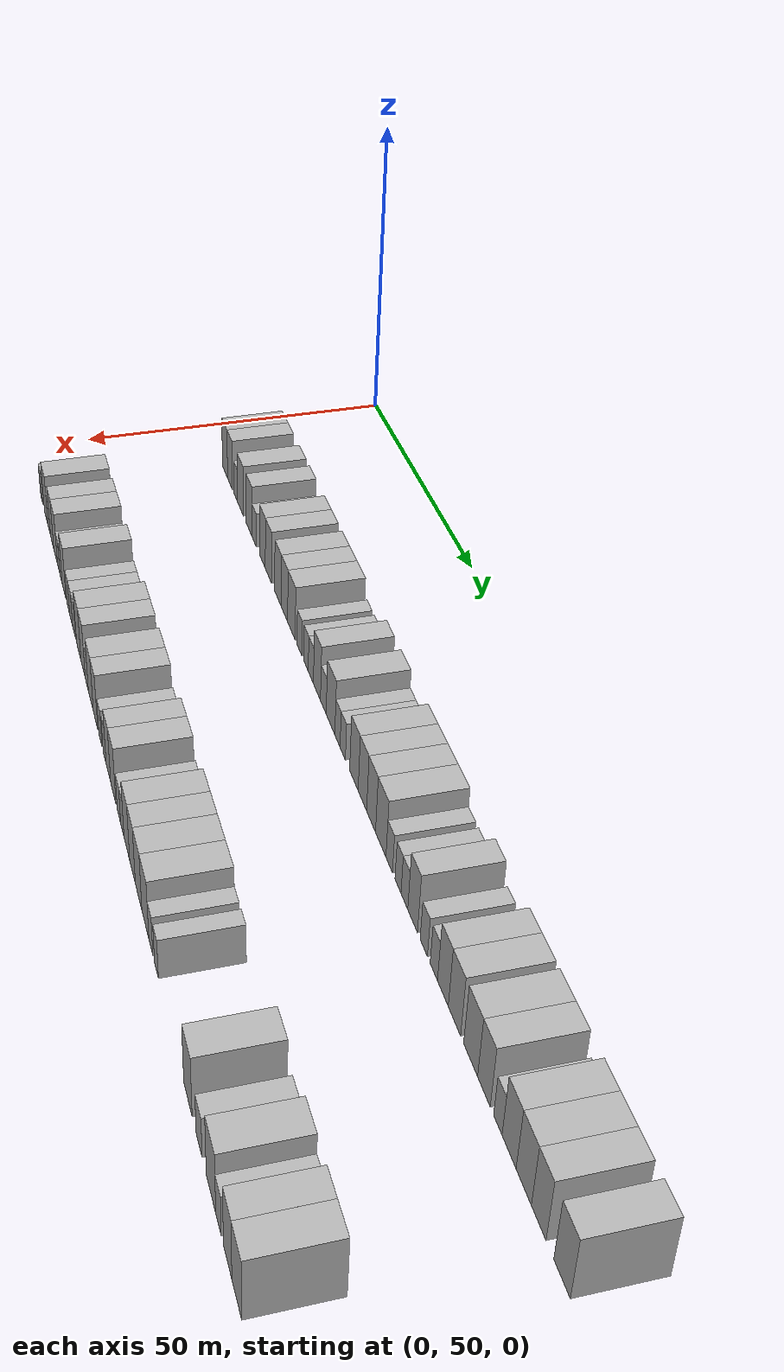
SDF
<sdf version="1.6">
 <world name="default">
  <model name="building_130">
   <static>1</static>
   <pose>25.0000 65.0644 0 0.000000 0.000000 0.000000</pose>
   <link name="link">
    <pose>0 0 4.50 0 0 0</pose>
    <collision name="collision"><geometry><box><size>10.0000 3.8439 9.0000</size></box></geometry></collision>
    <visual name="visual">
     <cast_shadows>0</cast_shadows>
     <geometry><box><size>10.0000 3.8439 9.0000</size></box></geometry>
     <material>
      <script>
       <uri>model://HANNAS_wall/materials/scripts</uri>
       <uri>model://HANNAS_wall/materials/textures</uri>
       <name>vrc/HANNAS_wall</name>
      </script>
     </material>
    </visual>
   </link>
  </model>
  <model name="building_131">
   <static>1</static>
   <pose>25.0000 68.8058 0 0.000000 0.000000 0.000000</pose>
   <link name="link">
    <pose>0 0 4.50 0 0 0</pose>
    <collision name="collision"><geometry><box><size>10.0000 3.6388 9.0000</size></box></geometry></collision>
    <visual name="visual">
     <cast_shadows>0</cast_shadows>
     <geometry><box><size>10.0000 3.6388 9.0000</size></box></geometry>
     <material>
      <script>
       <uri>model://HANNAS_wall/materials/scripts</uri>
       <uri>model://HANNAS_wall/materials/textures</uri>
       <name>vrc/HANNAS_wall</name>
      </script>
     </material>
    </visual>
   </link>
  </model>
  <model name="building_132">
   <static>1</static>
   <pose>25.0000 72.9142 0 0.000000 0.000000 0.000000</pose>
   <link name="link">
    <pose>0 0 3.00 0 0 0</pose>
    <collision name="collision"><geometry><box><size>10.0000 2.5780 6.0000</size></box></geometry></collision>
    <visual name="visual">
     <cast_shadows>0</cast_shadows>
     <geometry><box><size>10.0000 2.5780 6.0000</size></box></geometry>
     <material>
      <script>
       <uri>model://HANNAS_wall/materials/scripts</uri>
       <uri>model://HANNAS_wall/materials/textures</uri>
       <name>vrc/HANNAS_wall</name>
      </script>
     </material>
    </visual>
   </link>
  </model>
  <model name="building_133">
   <static>1</static>
   <pose>25.0000 76.3397 0 0.000000 0.000000 0.000000</pose>
   <link name="link">
    <pose>0 0 4.50 0 0 0</pose>
    <collision name="collision"><geometry><box><size>10.0000 4.2730 9.0000</size></box></geometry></collision>
    <visual name="visual">
     <cast_shadows>0</cast_shadows>
     <geometry><box><size>10.0000 4.2730 9.0000</size></box></geometry>
     <material>
      <script>
       <uri>model://HANNAS_wall/materials/scripts</uri>
       <uri>model://HANNAS_wall/materials/textures</uri>
       <name>vrc/HANNAS_wall</name>
      </script>
     </material>
    </visual>
   </link>
  </model>
  <model name="building_134">
   <static>1</static>
   <pose>25.0000 82.4493 0 0.000000 0.000000 0.000000</pose>
   <link name="link">
    <pose>0 0 4.50 0 0 0</pose>
    <collision name="collision"><geometry><box><size>10.0000 3.9463 9.0000</size></box></geometry></collision>
    <visual name="visual">
     <cast_shadows>0</cast_shadows>
     <geometry><box><size>10.0000 3.9463 9.0000</size></box></geometry>
     <material>
      <script>
       <uri>model://HANNAS_wall/materials/scripts</uri>
       <uri>model://HANNAS_wall/materials/textures</uri>
       <name>vrc/HANNAS_wall</name>
      </script>
     </material>
    </visual>
   </link>
  </model>
  <model name="building_135">
   <static>1</static>
   <pose>25.0000 85.8349 0 0.000000 0.000000 0.000000</pose>
   <link name="link">
    <pose>0 0 3.00 0 0 0</pose>
    <collision name="collision"><geometry><box><size>10.0000 2.8249 6.0000</size></box></geometry></collision>
    <visual name="visual">
     <cast_shadows>0</cast_shadows>
     <geometry><box><size>10.0000 2.8249 6.0000</size></box></geometry>
     <material>
      <script>
       <uri>model://HANNAS_wall/materials/scripts</uri>
       <uri>model://HANNAS_wall/materials/textures</uri>
       <name>vrc/HANNAS_wall</name>
      </script>
     </material>
    </visual>
   </link>
  </model>
  <model name="building_136">
   <static>1</static>
   <pose>25.0000 91.1812 0 0.000000 0.000000 0.000000</pose>
   <link name="link">
    <pose>0 0 4.50 0 0 0</pose>
    <collision name="collision"><geometry><box><size>10.0000 3.8676 9.0000</size></box></geometry></collision>
    <visual name="visual">
     <cast_shadows>0</cast_shadows>
     <geometry><box><size>10.0000 3.8676 9.0000</size></box></geometry>
     <material>
      <script>
       <uri>model://HANNAS_wall/materials/scripts</uri>
       <uri>model://HANNAS_wall/materials/textures</uri>
       <name>vrc/HANNAS_wall</name>
      </script>
     </material>
    </visual>
   </link>
  </model>
  <model name="building_137">
   <static>1</static>
   <pose>25.0000 95.0443 0 0.000000 0.000000 0.000000</pose>
   <link name="link">
    <pose>0 0 4.50 0 0 0</pose>
    <collision name="collision"><geometry><box><size>10.0000 3.8586 9.0000</size></box></geometry></collision>
    <visual name="visual">
     <cast_shadows>0</cast_shadows>
     <geometry><box><size>10.0000 3.8586 9.0000</size></box></geometry>
     <material>
      <script>
       <uri>model://HANNAS_wall/materials/scripts</uri>
       <uri>model://HANNAS_wall/materials/textures</uri>
       <name>vrc/HANNAS_wall</name>
      </script>
     </material>
    </visual>
   </link>
  </model>
  <model name="building_138">
   <static>1</static>
   <pose>25.0000 100.9538 0 0.000000 0.000000 0.000000</pose>
   <link name="link">
    <pose>0 0 4.50 0 0 0</pose>
    <collision name="collision"><geometry><box><size>10.0000 3.9604 9.0000</size></box></geometry></collision>
    <visual name="visual">
     <cast_shadows>0</cast_shadows>
     <geometry><box><size>10.0000 3.9604 9.0000</size></box></geometry>
     <material>
      <script>
       <uri>model://HANNAS_wall/materials/scripts</uri>
       <uri>model://HANNAS_wall/materials/textures</uri>
       <name>vrc/HANNAS_wall</name>
      </script>
     </material>
    </visual>
   </link>
  </model>
  <model name="building_139">
   <static>1</static>
   <pose>25.0000 104.8355 0 0.000000 0.000000 0.000000</pose>
   <link name="link">
    <pose>0 0 4.50 0 0 0</pose>
    <collision name="collision"><geometry><box><size>10.0000 3.8031 9.0000</size></box></geometry></collision>
    <visual name="visual">
     <cast_shadows>0</cast_shadows>
     <geometry><box><size>10.0000 3.8031 9.0000</size></box></geometry>
     <material>
      <script>
       <uri>model://HANNAS_wall/materials/scripts</uri>
       <uri>model://HANNAS_wall/materials/textures</uri>
       <name>vrc/HANNAS_wall</name>
      </script>
     </material>
    </visual>
   </link>
  </model>
  <model name="building_140">
   <static>1</static>
   <pose>25.0000 108.9244 0 0.000000 0.000000 0.000000</pose>
   <link name="link">
    <pose>0 0 4.50 0 0 0</pose>
    <collision name="collision"><geometry><box><size>10.0000 4.3747 9.0000</size></box></geometry></collision>
    <visual name="visual">
     <cast_shadows>0</cast_shadows>
     <geometry><box><size>10.0000 4.3747 9.0000</size></box></geometry>
     <material>
      <script>
       <uri>model://HANNAS_wall/materials/scripts</uri>
       <uri>model://HANNAS_wall/materials/textures</uri>
       <name>vrc/HANNAS_wall</name>
      </script>
     </material>
    </visual>
   </link>
  </model>
  <model name="building_141">
   <static>1</static>
   <pose>25.0000 113.4493 0 0.000000 0.000000 0.000000</pose>
   <link name="link">
    <pose>0 0 3.00 0 0 0</pose>
    <collision name="collision"><geometry><box><size>10.0000 2.6751 6.0000</size></box></geometry></collision>
    <visual name="visual">
     <cast_shadows>0</cast_shadows>
     <geometry><box><size>10.0000 2.6751 6.0000</size></box></geometry>
     <material>
      <script>
       <uri>model://HANNAS_wall/materials/scripts</uri>
       <uri>model://HANNAS_wall/materials/textures</uri>
       <name>vrc/HANNAS_wall</name>
      </script>
     </material>
    </visual>
   </link>
  </model>
  <model name="building_142">
   <static>1</static>
   <pose>25.0000 117.0825 0 0.000000 0.000000 0.000000</pose>
   <link name="link">
    <pose>0 0 3.00 0 0 0</pose>
    <collision name="collision"><geometry><box><size>10.0000 2.5914 6.0000</size></box></geometry></collision>
    <visual name="visual">
     <cast_shadows>0</cast_shadows>
     <geometry><box><size>10.0000 2.5914 6.0000</size></box></geometry>
     <material>
      <script>
       <uri>model://HANNAS_wall/materials/scripts</uri>
       <uri>model://HANNAS_wall/materials/textures</uri>
       <name>vrc/HANNAS_wall</name>
      </script>
     </material>
    </visual>
   </link>
  </model>
  <model name="building_143">
   <static>1</static>
   <pose>25.0000 119.7639 0 0.000000 0.000000 0.000000</pose>
   <link name="link">
    <pose>0 0 3.00 0 0 0</pose>
    <collision name="collision"><geometry><box><size>10.0000 2.7714 6.0000</size></box></geometry></collision>
    <visual name="visual">
     <cast_shadows>0</cast_shadows>
     <geometry><box><size>10.0000 2.7714 6.0000</size></box></geometry>
     <material>
      <script>
       <uri>model://HANNAS_wall/materials/scripts</uri>
       <uri>model://HANNAS_wall/materials/textures</uri>
       <name>vrc/HANNAS_wall</name>
      </script>
     </material>
    </visual>
   </link>
  </model>
  <model name="building_144">
   <static>1</static>
   <pose>25.0000 122.9993 0 0.000000 0.000000 0.000000</pose>
   <link name="link">
    <pose>0 0 4.50 0 0 0</pose>
    <collision name="collision"><geometry><box><size>10.0000 3.6993 9.0000</size></box></geometry></collision>
    <visual name="visual">
     <cast_shadows>0</cast_shadows>
     <geometry><box><size>10.0000 3.6993 9.0000</size></box></geometry>
     <material>
      <script>
       <uri>model://HANNAS_wall/materials/scripts</uri>
       <uri>model://HANNAS_wall/materials/textures</uri>
       <name>vrc/HANNAS_wall</name>
      </script>
     </material>
    </visual>
   </link>
  </model>
  <model name="building_145">
   <static>1</static>
   <pose>25.0000 126.3126 0 0.000000 0.000000 0.000000</pose>
   <link name="link">
    <pose>0 0 3.00 0 0 0</pose>
    <collision name="collision"><geometry><box><size>10.0000 2.9273 6.0000</size></box></geometry></collision>
    <visual name="visual">
     <cast_shadows>0</cast_shadows>
     <geometry><box><size>10.0000 2.9273 6.0000</size></box></geometry>
     <material>
      <script>
       <uri>model://HANNAS_wall/materials/scripts</uri>
       <uri>model://HANNAS_wall/materials/textures</uri>
       <name>vrc/HANNAS_wall</name>
      </script>
     </material>
    </visual>
   </link>
  </model>
  <model name="building_146">
   <static>1</static>
   <pose>25.0000 129.9401 0 0.000000 0.000000 0.000000</pose>
   <link name="link">
    <pose>0 0 4.50 0 0 0</pose>
    <collision name="collision"><geometry><box><size>10.0000 4.3277 9.0000</size></box></geometry></collision>
    <visual name="visual">
     <cast_shadows>0</cast_shadows>
     <geometry><box><size>10.0000 4.3277 9.0000</size></box></geometry>
     <material>
      <script>
       <uri>model://HANNAS_wall/materials/scripts</uri>
       <uri>model://HANNAS_wall/materials/textures</uri>
       <name>vrc/HANNAS_wall</name>
      </script>
     </material>
    </visual>
   </link>
  </model>
  <model name="building_147">
   <static>1</static>
   <pose>25.0000 133.3811 0 0.000000 0.000000 0.000000</pose>
   <link name="link">
    <pose>0 0 3.00 0 0 0</pose>
    <collision name="collision"><geometry><box><size>10.0000 2.5542 6.0000</size></box></geometry></collision>
    <visual name="visual">
     <cast_shadows>0</cast_shadows>
     <geometry><box><size>10.0000 2.5542 6.0000</size></box></geometry>
     <material>
      <script>
       <uri>model://HANNAS_wall/materials/scripts</uri>
       <uri>model://HANNAS_wall/materials/textures</uri>
       <name>vrc/HANNAS_wall</name>
      </script>
     </material>
    </visual>
   </link>
  </model>
  <model name="building_148">
   <static>1</static>
   <pose>25.0000 135.9345 0 0.000000 0.000000 0.000000</pose>
   <link name="link">
    <pose>0 0 3.00 0 0 0</pose>
    <collision name="collision"><geometry><box><size>10.0000 2.5527 6.0000</size></box></geometry></collision>
    <visual name="visual">
     <cast_shadows>0</cast_shadows>
     <geometry><box><size>10.0000 2.5527 6.0000</size></box></geometry>
     <material>
      <script>
       <uri>model://HANNAS_wall/materials/scripts</uri>
       <uri>model://HANNAS_wall/materials/textures</uri>
       <name>vrc/HANNAS_wall</name>
      </script>
     </material>
    </visual>
   </link>
  </model>
  <model name="building_149">
   <static>1</static>
   <pose>25.0000 141.1708 0 0.000000 0.000000 0.000000</pose>
   <link name="link">
    <pose>0 0 4.50 0 0 0</pose>
    <collision name="collision"><geometry><box><size>10.0000 3.9199 9.0000</size></box></geometry></collision>
    <visual name="visual">
     <cast_shadows>0</cast_shadows>
     <geometry><box><size>10.0000 3.9199 9.0000</size></box></geometry>
     <material>
      <script>
       <uri>model://HANNAS_wall/materials/scripts</uri>
       <uri>model://HANNAS_wall/materials/textures</uri>
       <name>vrc/HANNAS_wall</name>
      </script>
     </material>
    </visual>
   </link>
  </model>
  <model name="building_150">
   <static>1</static>
   <pose>25.0000 145.0275 0 0.000000 0.000000 0.000000</pose>
   <link name="link">
    <pose>0 0 4.50 0 0 0</pose>
    <collision name="collision"><geometry><box><size>10.0000 3.7934 9.0000</size></box></geometry></collision>
    <visual name="visual">
     <cast_shadows>0</cast_shadows>
     <geometry><box><size>10.0000 3.7934 9.0000</size></box></geometry>
     <material>
      <script>
       <uri>model://HANNAS_wall/materials/scripts</uri>
       <uri>model://HANNAS_wall/materials/textures</uri>
       <name>vrc/HANNAS_wall</name>
      </script>
     </material>
    </visual>
   </link>
  </model>
  <model name="building_151">
   <static>1</static>
   <pose>25.0000 148.8628 0 0.000000 0.000000 0.000000</pose>
   <link name="link">
    <pose>0 0 4.50 0 0 0</pose>
    <collision name="collision"><geometry><box><size>10.0000 3.8771 9.0000</size></box></geometry></collision>
    <visual name="visual">
     <cast_shadows>0</cast_shadows>
     <geometry><box><size>10.0000 3.8771 9.0000</size></box></geometry>
     <material>
      <script>
       <uri>model://HANNAS_wall/materials/scripts</uri>
       <uri>model://HANNAS_wall/materials/textures</uri>
       <name>vrc/HANNAS_wall</name>
      </script>
     </material>
    </visual>
   </link>
  </model>
  <model name="building_152">
   <static>1</static>
   <pose>25.0000 152.9997 0 0.000000 0.000000 0.000000</pose>
   <link name="link">
    <pose>0 0 4.50 0 0 0</pose>
    <collision name="collision"><geometry><box><size>10.0000 4.3968 9.0000</size></box></geometry></collision>
    <visual name="visual">
     <cast_shadows>0</cast_shadows>
     <geometry><box><size>10.0000 4.3968 9.0000</size></box></geometry>
     <material>
      <script>
       <uri>model://HANNAS_wall/materials/scripts</uri>
       <uri>model://HANNAS_wall/materials/textures</uri>
       <name>vrc/HANNAS_wall</name>
      </script>
     </material>
    </visual>
   </link>
  </model>
  <model name="building_153">
   <static>1</static>
   <pose>25.0000 156.5341 0 0.000000 0.000000 0.000000</pose>
   <link name="link">
    <pose>0 0 3.00 0 0 0</pose>
    <collision name="collision"><geometry><box><size>10.0000 2.6719 6.0000</size></box></geometry></collision>
    <visual name="visual">
     <cast_shadows>0</cast_shadows>
     <geometry><box><size>10.0000 2.6719 6.0000</size></box></geometry>
     <material>
      <script>
       <uri>model://HANNAS_wall/materials/scripts</uri>
       <uri>model://HANNAS_wall/materials/textures</uri>
       <name>vrc/HANNAS_wall</name>
      </script>
     </material>
    </visual>
   </link>
  </model>
  <model name="building_154">
   <static>1</static>
   <pose>25.0000 160.0767 0 0.000000 0.000000 0.000000</pose>
   <link name="link">
    <pose>0 0 3.00 0 0 0</pose>
    <collision name="collision"><geometry><box><size>10.0000 2.4133 6.0000</size></box></geometry></collision>
    <visual name="visual">
     <cast_shadows>0</cast_shadows>
     <geometry><box><size>10.0000 2.4133 6.0000</size></box></geometry>
     <material>
      <script>
       <uri>model://HANNAS_wall/materials/scripts</uri>
       <uri>model://HANNAS_wall/materials/textures</uri>
       <name>vrc/HANNAS_wall</name>
      </script>
     </material>
    </visual>
   </link>
  </model>
  <model name="building_155">
   <static>1</static>
   <pose>25.0000 162.6067 0 0.000000 0.000000 0.000000</pose>
   <link name="link">
    <pose>0 0 3.00 0 0 0</pose>
    <collision name="collision"><geometry><box><size>10.0000 2.6466 6.0000</size></box></geometry></collision>
    <visual name="visual">
     <cast_shadows>0</cast_shadows>
     <geometry><box><size>10.0000 2.6466 6.0000</size></box></geometry>
     <material>
      <script>
       <uri>model://HANNAS_wall/materials/scripts</uri>
       <uri>model://HANNAS_wall/materials/textures</uri>
       <name>vrc/HANNAS_wall</name>
      </script>
     </material>
    </visual>
   </link>
  </model>
  <model name="building_156">
   <static>1</static>
   <pose>25.0000 165.7746 0 0.000000 0.000000 0.000000</pose>
   <link name="link">
    <pose>0 0 4.50 0 0 0</pose>
    <collision name="collision"><geometry><box><size>10.0000 3.6893 9.0000</size></box></geometry></collision>
    <visual name="visual">
     <cast_shadows>0</cast_shadows>
     <geometry><box><size>10.0000 3.6893 9.0000</size></box></geometry>
     <material>
      <script>
       <uri>model://HANNAS_wall/materials/scripts</uri>
       <uri>model://HANNAS_wall/materials/textures</uri>
       <name>vrc/HANNAS_wall</name>
      </script>
     </material>
    </visual>
   </link>
  </model>
  <model name="building_157">
   <static>1</static>
   <pose>25.0000 169.9534 0 0.000000 0.000000 0.000000</pose>
   <link name="link">
    <pose>0 0 3.00 0 0 0</pose>
    <collision name="collision"><geometry><box><size>10.0000 2.6684 6.0000</size></box></geometry></collision>
    <visual name="visual">
     <cast_shadows>0</cast_shadows>
     <geometry><box><size>10.0000 2.6684 6.0000</size></box></geometry>
     <material>
      <script>
       <uri>model://HANNAS_wall/materials/scripts</uri>
       <uri>model://HANNAS_wall/materials/textures</uri>
       <name>vrc/HANNAS_wall</name>
      </script>
     </material>
    </visual>
   </link>
  </model>
  <model name="building_158">
   <static>1</static>
   <pose>25.0000 173.5885 0 0.000000 0.000000 0.000000</pose>
   <link name="link">
    <pose>0 0 3.00 0 0 0</pose>
    <collision name="collision"><geometry><box><size>10.0000 2.6018 6.0000</size></box></geometry></collision>
    <visual name="visual">
     <cast_shadows>0</cast_shadows>
     <geometry><box><size>10.0000 2.6018 6.0000</size></box></geometry>
     <material>
      <script>
       <uri>model://HANNAS_wall/materials/scripts</uri>
       <uri>model://HANNAS_wall/materials/textures</uri>
       <name>vrc/HANNAS_wall</name>
      </script>
     </material>
    </visual>
   </link>
  </model>
  <model name="building_159">
   <static>1</static>
   <pose>25.0000 176.7605 0 0.000000 0.000000 0.000000</pose>
   <link name="link">
    <pose>0 0 4.50 0 0 0</pose>
    <collision name="collision"><geometry><box><size>10.0000 3.7422 9.0000</size></box></geometry></collision>
    <visual name="visual">
     <cast_shadows>0</cast_shadows>
     <geometry><box><size>10.0000 3.7422 9.0000</size></box></geometry>
     <material>
      <script>
       <uri>model://HANNAS_wall/materials/scripts</uri>
       <uri>model://HANNAS_wall/materials/textures</uri>
       <name>vrc/HANNAS_wall</name>
      </script>
     </material>
    </visual>
   </link>
  </model>
  <model name="building_160">
   <static>1</static>
   <pose>25.0000 180.7043 0 0.000000 0.000000 0.000000</pose>
   <link name="link">
    <pose>0 0 4.50 0 0 0</pose>
    <collision name="collision"><geometry><box><size>10.0000 4.1453 9.0000</size></box></geometry></collision>
    <visual name="visual">
     <cast_shadows>0</cast_shadows>
     <geometry><box><size>10.0000 4.1453 9.0000</size></box></geometry>
     <material>
      <script>
       <uri>model://HANNAS_wall/materials/scripts</uri>
       <uri>model://HANNAS_wall/materials/textures</uri>
       <name>vrc/HANNAS_wall</name>
      </script>
     </material>
    </visual>
   </link>
  </model>
  <model name="building_161">
   <static>1</static>
   <pose>25.0000 186.0130 0 0.000000 0.000000 0.000000</pose>
   <link name="link">
    <pose>0 0 4.50 0 0 0</pose>
    <collision name="collision"><geometry><box><size>10.0000 4.4722 9.0000</size></box></geometry></collision>
    <visual name="visual">
     <cast_shadows>0</cast_shadows>
     <geometry><box><size>10.0000 4.4722 9.0000</size></box></geometry>
     <material>
      <script>
       <uri>model://HANNAS_wall/materials/scripts</uri>
       <uri>model://HANNAS_wall/materials/textures</uri>
       <name>vrc/HANNAS_wall</name>
      </script>
     </material>
    </visual>
   </link>
  </model>
  <model name="building_162">
   <static>1</static>
   <pose>25.0000 190.2027 0 0.000000 0.000000 0.000000</pose>
   <link name="link">
    <pose>0 0 4.50 0 0 0</pose>
    <collision name="collision"><geometry><box><size>10.0000 3.9072 9.0000</size></box></geometry></collision>
    <visual name="visual">
     <cast_shadows>0</cast_shadows>
     <geometry><box><size>10.0000 3.9072 9.0000</size></box></geometry>
     <material>
      <script>
       <uri>model://HANNAS_wall/materials/scripts</uri>
       <uri>model://HANNAS_wall/materials/textures</uri>
       <name>vrc/HANNAS_wall</name>
      </script>
     </material>
    </visual>
   </link>
  </model>
  <model name="building_163">
   <static>1</static>
   <pose>25.0000 194.4133 0 0.000000 0.000000 0.000000</pose>
   <link name="link">
    <pose>0 0 3.00 0 0 0</pose>
    <collision name="collision"><geometry><box><size>10.0000 2.5140 6.0000</size></box></geometry></collision>
    <visual name="visual">
     <cast_shadows>0</cast_shadows>
     <geometry><box><size>10.0000 2.5140 6.0000</size></box></geometry>
     <material>
      <script>
       <uri>model://HANNAS_wall/materials/scripts</uri>
       <uri>model://HANNAS_wall/materials/textures</uri>
       <name>vrc/HANNAS_wall</name>
      </script>
     </material>
    </visual>
   </link>
  </model>
  <model name="building_164">
   <static>1</static>
   <pose>25.0000 197.6882 0 0.000000 0.000000 0.000000</pose>
   <link name="link">
    <pose>0 0 4.50 0 0 0</pose>
    <collision name="collision"><geometry><box><size>10.0000 4.0358 9.0000</size></box></geometry></collision>
    <visual name="visual">
     <cast_shadows>0</cast_shadows>
     <geometry><box><size>10.0000 4.0358 9.0000</size></box></geometry>
     <material>
      <script>
       <uri>model://HANNAS_wall/materials/scripts</uri>
       <uri>model://HANNAS_wall/materials/textures</uri>
       <name>vrc/HANNAS_wall</name>
      </script>
     </material>
    </visual>
   </link>
  </model>
  <model name="building_165">
   <static>1</static>
   <pose>25.0000 201.8246 0 0.000000 0.000000 0.000000</pose>
   <link name="link">
    <pose>0 0 4.50 0 0 0</pose>
    <collision name="collision"><geometry><box><size>10.0000 4.2370 9.0000</size></box></geometry></collision>
    <visual name="visual">
     <cast_shadows>0</cast_shadows>
     <geometry><box><size>10.0000 4.2370 9.0000</size></box></geometry>
     <material>
      <script>
       <uri>model://HANNAS_wall/materials/scripts</uri>
       <uri>model://HANNAS_wall/materials/textures</uri>
       <name>vrc/HANNAS_wall</name>
      </script>
     </material>
    </visual>
   </link>
  </model>
  <model name="building_166">
   <static>1</static>
   <pose>25.0000 205.8927 0 0.000000 0.000000 0.000000</pose>
   <link name="link">
    <pose>0 0 4.50 0 0 0</pose>
    <collision name="collision"><geometry><box><size>10.0000 3.8991 9.0000</size></box></geometry></collision>
    <visual name="visual">
     <cast_shadows>0</cast_shadows>
     <geometry><box><size>10.0000 3.8991 9.0000</size></box></geometry>
     <material>
      <script>
       <uri>model://HANNAS_wall/materials/scripts</uri>
       <uri>model://HANNAS_wall/materials/textures</uri>
       <name>vrc/HANNAS_wall</name>
      </script>
     </material>
    </visual>
   </link>
  </model>
  <model name="building_167">
   <static>1</static>
   <pose>25.0000 211.9227 0 0.000000 0.000000 0.000000</pose>
   <link name="link">
    <pose>0 0 4.50 0 0 0</pose>
    <collision name="collision"><geometry><box><size>10.0000 4.1609 9.0000</size></box></geometry></collision>
    <visual name="visual">
     <cast_shadows>0</cast_shadows>
     <geometry><box><size>10.0000 4.1609 9.0000</size></box></geometry>
     <material>
      <script>
       <uri>model://HANNAS_wall/materials/scripts</uri>
       <uri>model://HANNAS_wall/materials/textures</uri>
       <name>vrc/HANNAS_wall</name>
      </script>
     </material>
    </visual>
   </link>
  </model>
  <model name="building_360">
   <static>1</static>
   <pose>55.0000 66.6183 0 0.000000 0.000000 0.000000</pose>
   <link name="link">
    <pose>0 0 3.00 0 0 0</pose>
    <collision name="collision"><geometry><box><size>10.0000 2.5934 6.0000</size></box></geometry></collision>
    <visual name="visual">
     <cast_shadows>0</cast_shadows>
     <geometry><box><size>10.0000 2.5934 6.0000</size></box></geometry>
     <material>
      <script>
       <uri>model://HANNAS_wall/materials/scripts</uri>
       <uri>model://HANNAS_wall/materials/textures</uri>
       <name>vrc/HANNAS_wall</name>
      </script>
     </material>
    </visual>
   </link>
  </model>
  <model name="building_361">
   <static>1</static>
   <pose>55.0000 72.0934 0 0.000000 0.000000 0.000000</pose>
   <link name="link">
    <pose>0 0 4.50 0 0 0</pose>
    <collision name="collision"><geometry><box><size>10.0000 4.3568 9.0000</size></box></geometry></collision>
    <visual name="visual">
     <cast_shadows>0</cast_shadows>
     <geometry><box><size>10.0000 4.3568 9.0000</size></box></geometry>
     <material>
      <script>
       <uri>model://HANNAS_wall/materials/scripts</uri>
       <uri>model://HANNAS_wall/materials/textures</uri>
       <name>vrc/HANNAS_wall</name>
      </script>
     </material>
    </visual>
   </link>
  </model>
  <model name="building_362">
   <static>1</static>
   <pose>55.0000 75.6931 0 0.000000 0.000000 0.000000</pose>
   <link name="link">
    <pose>0 0 3.00 0 0 0</pose>
    <collision name="collision"><geometry><box><size>10.0000 2.8425 6.0000</size></box></geometry></collision>
    <visual name="visual">
     <cast_shadows>0</cast_shadows>
     <geometry><box><size>10.0000 2.8425 6.0000</size></box></geometry>
     <material>
      <script>
       <uri>model://HANNAS_wall/materials/scripts</uri>
       <uri>model://HANNAS_wall/materials/textures</uri>
       <name>vrc/HANNAS_wall</name>
      </script>
     </material>
    </visual>
   </link>
  </model>
  <model name="building_363">
   <static>1</static>
   <pose>55.0000 78.9785 0 0.000000 0.000000 0.000000</pose>
   <link name="link">
    <pose>0 0 4.50 0 0 0</pose>
    <collision name="collision"><geometry><box><size>10.0000 3.7283 9.0000</size></box></geometry></collision>
    <visual name="visual">
     <cast_shadows>0</cast_shadows>
     <geometry><box><size>10.0000 3.7283 9.0000</size></box></geometry>
     <material>
      <script>
       <uri>model://HANNAS_wall/materials/scripts</uri>
       <uri>model://HANNAS_wall/materials/textures</uri>
       <name>vrc/HANNAS_wall</name>
      </script>
     </material>
    </visual>
   </link>
  </model>
  <model name="building_364">
   <static>1</static>
   <pose>55.0000 82.9694 0 0.000000 0.000000 0.000000</pose>
   <link name="link">
    <pose>0 0 4.50 0 0 0</pose>
    <collision name="collision"><geometry><box><size>10.0000 4.2535 9.0000</size></box></geometry></collision>
    <visual name="visual">
     <cast_shadows>0</cast_shadows>
     <geometry><box><size>10.0000 4.2535 9.0000</size></box></geometry>
     <material>
      <script>
       <uri>model://HANNAS_wall/materials/scripts</uri>
       <uri>model://HANNAS_wall/materials/textures</uri>
       <name>vrc/HANNAS_wall</name>
      </script>
     </material>
    </visual>
   </link>
  </model>
  <model name="building_365">
   <static>1</static>
   <pose>55.0000 86.3655 0 0.000000 0.000000 0.000000</pose>
   <link name="link">
    <pose>0 0 3.00 0 0 0</pose>
    <collision name="collision"><geometry><box><size>10.0000 2.5387 6.0000</size></box></geometry></collision>
    <visual name="visual">
     <cast_shadows>0</cast_shadows>
     <geometry><box><size>10.0000 2.5387 6.0000</size></box></geometry>
     <material>
      <script>
       <uri>model://HANNAS_wall/materials/scripts</uri>
       <uri>model://HANNAS_wall/materials/textures</uri>
       <name>vrc/HANNAS_wall</name>
      </script>
     </material>
    </visual>
   </link>
  </model>
  <model name="building_366">
   <static>1</static>
   <pose>55.0000 88.8703 0 0.000000 0.000000 0.000000</pose>
   <link name="link">
    <pose>0 0 3.00 0 0 0</pose>
    <collision name="collision"><geometry><box><size>10.0000 2.4709 6.0000</size></box></geometry></collision>
    <visual name="visual">
     <cast_shadows>0</cast_shadows>
     <geometry><box><size>10.0000 2.4709 6.0000</size></box></geometry>
     <material>
      <script>
       <uri>model://HANNAS_wall/materials/scripts</uri>
       <uri>model://HANNAS_wall/materials/textures</uri>
       <name>vrc/HANNAS_wall</name>
      </script>
     </material>
    </visual>
   </link>
  </model>
  <model name="building_367">
   <static>1</static>
   <pose>55.0000 92.1462 0 0.000000 0.000000 0.000000</pose>
   <link name="link">
    <pose>0 0 4.50 0 0 0</pose>
    <collision name="collision"><geometry><box><size>10.0000 4.0808 9.0000</size></box></geometry></collision>
    <visual name="visual">
     <cast_shadows>0</cast_shadows>
     <geometry><box><size>10.0000 4.0808 9.0000</size></box></geometry>
     <material>
      <script>
       <uri>model://HANNAS_wall/materials/scripts</uri>
       <uri>model://HANNAS_wall/materials/textures</uri>
       <name>vrc/HANNAS_wall</name>
      </script>
     </material>
    </visual>
   </link>
  </model>
  <model name="building_368">
   <static>1</static>
   <pose>55.0000 96.5837 0 0.000000 0.000000 0.000000</pose>
   <link name="link">
    <pose>0 0 3.00 0 0 0</pose>
    <collision name="collision"><geometry><box><size>10.0000 2.7941 6.0000</size></box></geometry></collision>
    <visual name="visual">
     <cast_shadows>0</cast_shadows>
     <geometry><box><size>10.0000 2.7941 6.0000</size></box></geometry>
     <material>
      <script>
       <uri>model://HANNAS_wall/materials/scripts</uri>
       <uri>model://HANNAS_wall/materials/textures</uri>
       <name>vrc/HANNAS_wall</name>
      </script>
     </material>
    </visual>
   </link>
  </model>
  <model name="building_369">
   <static>1</static>
   <pose>55.0000 99.4192 0 0.000000 0.000000 0.000000</pose>
   <link name="link">
    <pose>0 0 3.00 0 0 0</pose>
    <collision name="collision"><geometry><box><size>10.0000 2.8768 6.0000</size></box></geometry></collision>
    <visual name="visual">
     <cast_shadows>0</cast_shadows>
     <geometry><box><size>10.0000 2.8768 6.0000</size></box></geometry>
     <material>
      <script>
       <uri>model://HANNAS_wall/materials/scripts</uri>
       <uri>model://HANNAS_wall/materials/textures</uri>
       <name>vrc/HANNAS_wall</name>
      </script>
     </material>
    </visual>
   </link>
  </model>
  <model name="building_370">
   <static>1</static>
   <pose>55.0000 102.3298 0 0.000000 0.000000 0.000000</pose>
   <link name="link">
    <pose>0 0 3.00 0 0 0</pose>
    <collision name="collision"><geometry><box><size>10.0000 2.9444 6.0000</size></box></geometry></collision>
    <visual name="visual">
     <cast_shadows>0</cast_shadows>
     <geometry><box><size>10.0000 2.9444 6.0000</size></box></geometry>
     <material>
      <script>
       <uri>model://HANNAS_wall/materials/scripts</uri>
       <uri>model://HANNAS_wall/materials/textures</uri>
       <name>vrc/HANNAS_wall</name>
      </script>
     </material>
    </visual>
   </link>
  </model>
  <model name="building_371">
   <static>1</static>
   <pose>55.0000 106.8881 0 0.000000 0.000000 0.000000</pose>
   <link name="link">
    <pose>0 0 4.50 0 0 0</pose>
    <collision name="collision"><geometry><box><size>10.0000 4.1723 9.0000</size></box></geometry></collision>
    <visual name="visual">
     <cast_shadows>0</cast_shadows>
     <geometry><box><size>10.0000 4.1723 9.0000</size></box></geometry>
     <material>
      <script>
       <uri>model://HANNAS_wall/materials/scripts</uri>
       <uri>model://HANNAS_wall/materials/textures</uri>
       <name>vrc/HANNAS_wall</name>
      </script>
     </material>
    </visual>
   </link>
  </model>
  <model name="building_372">
   <static>1</static>
   <pose>55.0000 110.9432 0 0.000000 0.000000 0.000000</pose>
   <link name="link">
    <pose>0 0 4.50 0 0 0</pose>
    <collision name="collision"><geometry><box><size>10.0000 3.9377 9.0000</size></box></geometry></collision>
    <visual name="visual">
     <cast_shadows>0</cast_shadows>
     <geometry><box><size>10.0000 3.9377 9.0000</size></box></geometry>
     <material>
      <script>
       <uri>model://HANNAS_wall/materials/scripts</uri>
       <uri>model://HANNAS_wall/materials/textures</uri>
       <name>vrc/HANNAS_wall</name>
      </script>
     </material>
    </visual>
   </link>
  </model>
  <model name="building_373">
   <static>1</static>
   <pose>55.0000 114.3371 0 0.000000 0.000000 0.000000</pose>
   <link name="link">
    <pose>0 0 3.00 0 0 0</pose>
    <collision name="collision"><geometry><box><size>10.0000 2.8501 6.0000</size></box></geometry></collision>
    <visual name="visual">
     <cast_shadows>0</cast_shadows>
     <geometry><box><size>10.0000 2.8501 6.0000</size></box></geometry>
     <material>
      <script>
       <uri>model://HANNAS_wall/materials/scripts</uri>
       <uri>model://HANNAS_wall/materials/textures</uri>
       <name>vrc/HANNAS_wall</name>
      </script>
     </material>
    </visual>
   </link>
  </model>
  <model name="building_374">
   <static>1</static>
   <pose>55.0000 117.9235 0 0.000000 0.000000 0.000000</pose>
   <link name="link">
    <pose>0 0 4.50 0 0 0</pose>
    <collision name="collision"><geometry><box><size>10.0000 4.3228 9.0000</size></box></geometry></collision>
    <visual name="visual">
     <cast_shadows>0</cast_shadows>
     <geometry><box><size>10.0000 4.3228 9.0000</size></box></geometry>
     <material>
      <script>
       <uri>model://HANNAS_wall/materials/scripts</uri>
       <uri>model://HANNAS_wall/materials/textures</uri>
       <name>vrc/HANNAS_wall</name>
      </script>
     </material>
    </visual>
   </link>
  </model>
  <model name="building_375">
   <static>1</static>
   <pose>55.0000 122.0058 0 0.000000 0.000000 0.000000</pose>
   <link name="link">
    <pose>0 0 4.50 0 0 0</pose>
    <collision name="collision"><geometry><box><size>10.0000 3.8417 9.0000</size></box></geometry></collision>
    <visual name="visual">
     <cast_shadows>0</cast_shadows>
     <geometry><box><size>10.0000 3.8417 9.0000</size></box></geometry>
     <material>
      <script>
       <uri>model://HANNAS_wall/materials/scripts</uri>
       <uri>model://HANNAS_wall/materials/textures</uri>
       <name>vrc/HANNAS_wall</name>
      </script>
     </material>
    </visual>
   </link>
  </model>
  <model name="building_376">
   <static>1</static>
   <pose>55.0000 126.1818 0 0.000000 0.000000 0.000000</pose>
   <link name="link">
    <pose>0 0 3.00 0 0 0</pose>
    <collision name="collision"><geometry><box><size>10.0000 2.5104 6.0000</size></box></geometry></collision>
    <visual name="visual">
     <cast_shadows>0</cast_shadows>
     <geometry><box><size>10.0000 2.5104 6.0000</size></box></geometry>
     <material>
      <script>
       <uri>model://HANNAS_wall/materials/scripts</uri>
       <uri>model://HANNAS_wall/materials/textures</uri>
       <name>vrc/HANNAS_wall</name>
      </script>
     </material>
    </visual>
   </link>
  </model>
  <model name="building_377">
   <static>1</static>
   <pose>55.0000 129.6504 0 0.000000 0.000000 0.000000</pose>
   <link name="link">
    <pose>0 0 3.00 0 0 0</pose>
    <collision name="collision"><geometry><box><size>10.0000 2.4267 6.0000</size></box></geometry></collision>
    <visual name="visual">
     <cast_shadows>0</cast_shadows>
     <geometry><box><size>10.0000 2.4267 6.0000</size></box></geometry>
     <material>
      <script>
       <uri>model://HANNAS_wall/materials/scripts</uri>
       <uri>model://HANNAS_wall/materials/textures</uri>
       <name>vrc/HANNAS_wall</name>
      </script>
     </material>
    </visual>
   </link>
  </model>
  <model name="building_378">
   <static>1</static>
   <pose>55.0000 132.6880 0 0.000000 0.000000 0.000000</pose>
   <link name="link">
    <pose>0 0 4.50 0 0 0</pose>
    <collision name="collision"><geometry><box><size>10.0000 3.6485 9.0000</size></box></geometry></collision>
    <visual name="visual">
     <cast_shadows>0</cast_shadows>
     <geometry><box><size>10.0000 3.6485 9.0000</size></box></geometry>
     <material>
      <script>
       <uri>model://HANNAS_wall/materials/scripts</uri>
       <uri>model://HANNAS_wall/materials/textures</uri>
       <name>vrc/HANNAS_wall</name>
      </script>
     </material>
    </visual>
   </link>
  </model>
  <model name="building_379">
   <static>1</static>
   <pose>55.0000 136.5404 0 0.000000 0.000000 0.000000</pose>
   <link name="link">
    <pose>0 0 4.50 0 0 0</pose>
    <collision name="collision"><geometry><box><size>10.0000 4.0562 9.0000</size></box></geometry></collision>
    <visual name="visual">
     <cast_shadows>0</cast_shadows>
     <geometry><box><size>10.0000 4.0562 9.0000</size></box></geometry>
     <material>
      <script>
       <uri>model://HANNAS_wall/materials/scripts</uri>
       <uri>model://HANNAS_wall/materials/textures</uri>
       <name>vrc/HANNAS_wall</name>
      </script>
     </material>
    </visual>
   </link>
  </model>
  <model name="building_380">
   <static>1</static>
   <pose>55.0000 140.8627 0 0.000000 0.000000 0.000000</pose>
   <link name="link">
    <pose>0 0 3.00 0 0 0</pose>
    <collision name="collision"><geometry><box><size>10.0000 2.5885 6.0000</size></box></geometry></collision>
    <visual name="visual">
     <cast_shadows>0</cast_shadows>
     <geometry><box><size>10.0000 2.5885 6.0000</size></box></geometry>
     <material>
      <script>
       <uri>model://HANNAS_wall/materials/scripts</uri>
       <uri>model://HANNAS_wall/materials/textures</uri>
       <name>vrc/HANNAS_wall</name>
      </script>
     </material>
    </visual>
   </link>
  </model>
  <model name="building_381">
   <static>1</static>
   <pose>55.0000 143.3640 0 0.000000 0.000000 0.000000</pose>
   <link name="link">
    <pose>0 0 3.00 0 0 0</pose>
    <collision name="collision"><geometry><box><size>10.0000 2.4141 6.0000</size></box></geometry></collision>
    <visual name="visual">
     <cast_shadows>0</cast_shadows>
     <geometry><box><size>10.0000 2.4141 6.0000</size></box></geometry>
     <material>
      <script>
       <uri>model://HANNAS_wall/materials/scripts</uri>
       <uri>model://HANNAS_wall/materials/textures</uri>
       <name>vrc/HANNAS_wall</name>
      </script>
     </material>
    </visual>
   </link>
  </model>
  <model name="building_382">
   <static>1</static>
   <pose>55.0000 146.6139 0 0.000000 0.000000 0.000000</pose>
   <link name="link">
    <pose>0 0 4.50 0 0 0</pose>
    <collision name="collision"><geometry><box><size>10.0000 4.0857 9.0000</size></box></geometry></collision>
    <visual name="visual">
     <cast_shadows>0</cast_shadows>
     <geometry><box><size>10.0000 4.0857 9.0000</size></box></geometry>
     <material>
      <script>
       <uri>model://HANNAS_wall/materials/scripts</uri>
       <uri>model://HANNAS_wall/materials/textures</uri>
       <name>vrc/HANNAS_wall</name>
      </script>
     </material>
    </visual>
   </link>
  </model>
  <model name="building_383">
   <static>1</static>
   <pose>55.0000 150.6216 0 0.000000 0.000000 0.000000</pose>
   <link name="link">
    <pose>0 0 4.50 0 0 0</pose>
    <collision name="collision"><geometry><box><size>10.0000 3.9297 9.0000</size></box></geometry></collision>
    <visual name="visual">
     <cast_shadows>0</cast_shadows>
     <geometry><box><size>10.0000 3.9297 9.0000</size></box></geometry>
     <material>
      <script>
       <uri>model://HANNAS_wall/materials/scripts</uri>
       <uri>model://HANNAS_wall/materials/textures</uri>
       <name>vrc/HANNAS_wall</name>
      </script>
     </material>
    </visual>
   </link>
  </model>
  <model name="building_384">
   <static>1</static>
   <pose>55.0000 154.7857 0 0.000000 0.000000 0.000000</pose>
   <link name="link">
    <pose>0 0 4.50 0 0 0</pose>
    <collision name="collision"><geometry><box><size>10.0000 4.3986 9.0000</size></box></geometry></collision>
    <visual name="visual">
     <cast_shadows>0</cast_shadows>
     <geometry><box><size>10.0000 4.3986 9.0000</size></box></geometry>
     <material>
      <script>
       <uri>model://HANNAS_wall/materials/scripts</uri>
       <uri>model://HANNAS_wall/materials/textures</uri>
       <name>vrc/HANNAS_wall</name>
      </script>
     </material>
    </visual>
   </link>
  </model>
  <model name="building_385">
   <static>1</static>
   <pose>55.0000 159.2347 0 0.000000 0.000000 0.000000</pose>
   <link name="link">
    <pose>0 0 4.50 0 0 0</pose>
    <collision name="collision"><geometry><box><size>10.0000 4.4992 9.0000</size></box></geometry></collision>
    <visual name="visual">
     <cast_shadows>0</cast_shadows>
     <geometry><box><size>10.0000 4.4992 9.0000</size></box></geometry>
     <material>
      <script>
       <uri>model://HANNAS_wall/materials/scripts</uri>
       <uri>model://HANNAS_wall/materials/textures</uri>
       <name>vrc/HANNAS_wall</name>
      </script>
     </material>
    </visual>
   </link>
  </model>
  <model name="building_386">
   <static>1</static>
   <pose>55.0000 162.7557 0 0.000000 0.000000 0.000000</pose>
   <link name="link">
    <pose>0 0 3.00 0 0 0</pose>
    <collision name="collision"><geometry><box><size>10.0000 2.5429 6.0000</size></box></geometry></collision>
    <visual name="visual">
     <cast_shadows>0</cast_shadows>
     <geometry><box><size>10.0000 2.5429 6.0000</size></box></geometry>
     <material>
      <script>
       <uri>model://HANNAS_wall/materials/scripts</uri>
       <uri>model://HANNAS_wall/materials/textures</uri>
       <name>vrc/HANNAS_wall</name>
      </script>
     </material>
    </visual>
   </link>
  </model>
  <model name="building_387">
   <static>1</static>
   <pose>55.0000 166.2456 0 0.000000 0.000000 0.000000</pose>
   <link name="link">
    <pose>0 0 3.00 0 0 0</pose>
    <collision name="collision"><geometry><box><size>10.0000 2.4367 6.0000</size></box></geometry></collision>
    <visual name="visual">
     <cast_shadows>0</cast_shadows>
     <geometry><box><size>10.0000 2.4367 6.0000</size></box></geometry>
     <material>
      <script>
       <uri>model://HANNAS_wall/materials/scripts</uri>
       <uri>model://HANNAS_wall/materials/textures</uri>
       <name>vrc/HANNAS_wall</name>
      </script>
     </material>
    </visual>
   </link>
  </model>
  <model name="building_388">
   <static>1</static>
   <pose>55.0000 184.0567 0 0.000000 0.000000 0.000000</pose>
   <link name="link">
    <pose>0 0 4.50 0 0 0</pose>
    <collision name="collision"><geometry><box><size>10.0000 4.3952 9.0000</size></box></geometry></collision>
    <visual name="visual">
     <cast_shadows>0</cast_shadows>
     <geometry><box><size>10.0000 4.3952 9.0000</size></box></geometry>
     <material>
      <script>
       <uri>model://HANNAS_wall/materials/scripts</uri>
       <uri>model://HANNAS_wall/materials/textures</uri>
       <name>vrc/HANNAS_wall</name>
      </script>
     </material>
    </visual>
   </link>
  </model>
  <model name="building_389">
   <static>1</static>
   <pose>55.0000 189.7474 0 0.000000 0.000000 0.000000</pose>
   <link name="link">
    <pose>0 0 3.00 0 0 0</pose>
    <collision name="collision"><geometry><box><size>10.0000 2.9863 6.0000</size></box></geometry></collision>
    <visual name="visual">
     <cast_shadows>0</cast_shadows>
     <geometry><box><size>10.0000 2.9863 6.0000</size></box></geometry>
     <material>
      <script>
       <uri>model://HANNAS_wall/materials/scripts</uri>
       <uri>model://HANNAS_wall/materials/textures</uri>
       <name>vrc/HANNAS_wall</name>
      </script>
     </material>
    </visual>
   </link>
  </model>
  <model name="building_390">
   <static>1</static>
   <pose>55.0000 195.4805 0 0.000000 0.000000 0.000000</pose>
   <link name="link">
    <pose>0 0 4.50 0 0 0</pose>
    <collision name="collision"><geometry><box><size>10.0000 4.4798 9.0000</size></box></geometry></collision>
    <visual name="visual">
     <cast_shadows>0</cast_shadows>
     <geometry><box><size>10.0000 4.4798 9.0000</size></box></geometry>
     <material>
      <script>
       <uri>model://HANNAS_wall/materials/scripts</uri>
       <uri>model://HANNAS_wall/materials/textures</uri>
       <name>vrc/HANNAS_wall</name>
      </script>
     </material>
    </visual>
   </link>
  </model>
  <model name="building_391">
   <static>1</static>
   <pose>55.0000 198.9683 0 0.000000 0.000000 0.000000</pose>
   <link name="link">
    <pose>0 0 3.00 0 0 0</pose>
    <collision name="collision"><geometry><box><size>10.0000 2.4958 6.0000</size></box></geometry></collision>
    <visual name="visual">
     <cast_shadows>0</cast_shadows>
     <geometry><box><size>10.0000 2.4958 6.0000</size></box></geometry>
     <material>
      <script>
       <uri>model://HANNAS_wall/materials/scripts</uri>
       <uri>model://HANNAS_wall/materials/textures</uri>
       <name>vrc/HANNAS_wall</name>
      </script>
     </material>
    </visual>
   </link>
  </model>
  <model name="building_392">
   <static>1</static>
   <pose>55.0000 203.0552 0 0.000000 0.000000 0.000000</pose>
   <link name="link">
    <pose>0 0 4.50 0 0 0</pose>
    <collision name="collision"><geometry><box><size>10.0000 3.6781 9.0000</size></box></geometry></collision>
    <visual name="visual">
     <cast_shadows>0</cast_shadows>
     <geometry><box><size>10.0000 3.6781 9.0000</size></box></geometry>
     <material>
      <script>
       <uri>model://HANNAS_wall/materials/scripts</uri>
       <uri>model://HANNAS_wall/materials/textures</uri>
       <name>vrc/HANNAS_wall</name>
      </script>
     </material>
    </visual>
   </link>
  </model>
  <model name="building_393">
   <static>1</static>
   <pose>55.0000 206.9735 0 0.000000 0.000000 0.000000</pose>
   <link name="link">
    <pose>0 0 4.50 0 0 0</pose>
    <collision name="collision"><geometry><box><size>10.0000 4.1583 9.0000</size></box></geometry></collision>
    <visual name="visual">
     <cast_shadows>0</cast_shadows>
     <geometry><box><size>10.0000 4.1583 9.0000</size></box></geometry>
     <material>
      <script>
       <uri>model://HANNAS_wall/materials/scripts</uri>
       <uri>model://HANNAS_wall/materials/textures</uri>
       <name>vrc/HANNAS_wall</name>
      </script>
     </material>
    </visual>
   </link>
  </model>
 </world>
</sdf>
